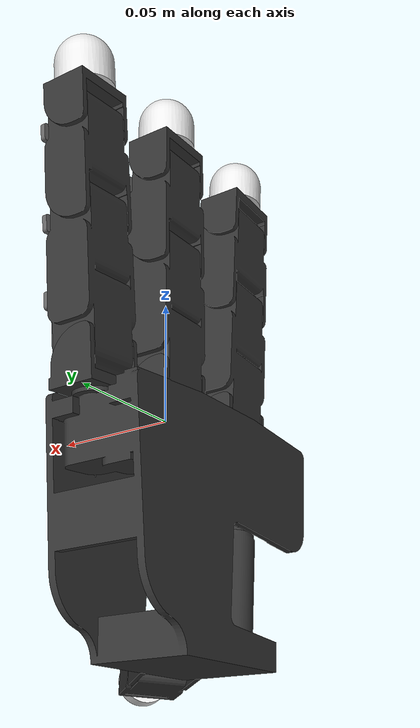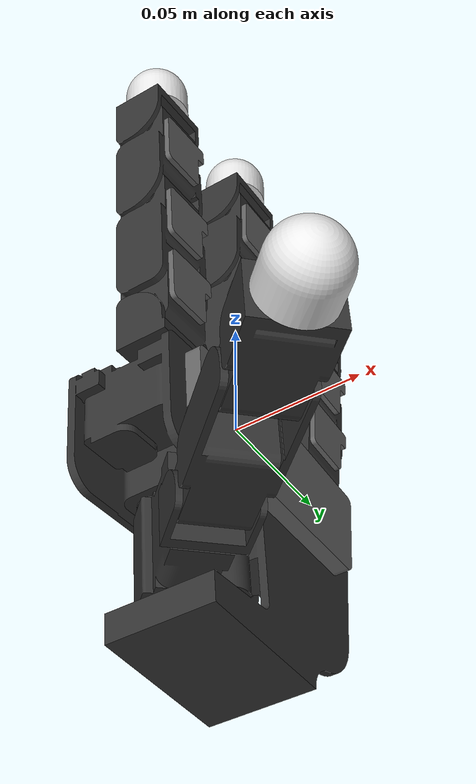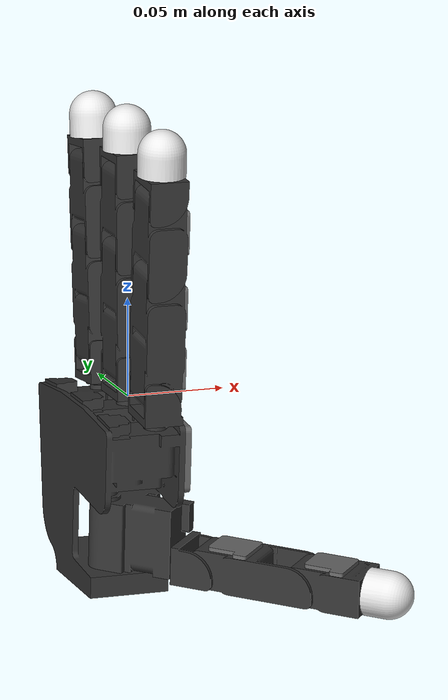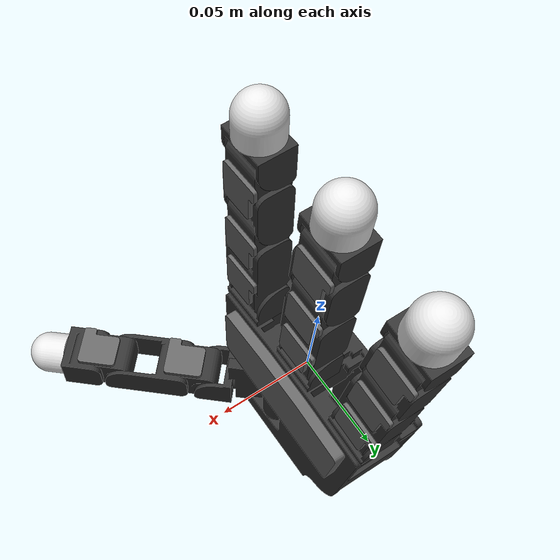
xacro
<?xml version="1.0"?>
<robot xmlns:xacro="http://www.ros.org/wiki/xacro" name="meta_hand">

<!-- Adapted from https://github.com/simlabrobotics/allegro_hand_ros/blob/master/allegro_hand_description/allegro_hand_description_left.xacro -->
<xacro:property name="DEG2RAD" value="0.01745329251" />

<!-- ======================== BASE PARAMS ========================= -->
<xacro:property name="base_link_z" value="0.095" />

<!-- ======================== FINGER PARAMS ======================== -->
<xacro:property name="offset_origin_x_const" value="0" />
<xacro:property name="offset_origin_y_const" value="0.0435" />
<xacro:property name="offset_origin_z_const" value="-0.001542" />
<xacro:property name="offset_origin_z_mid_const" value="0.0007" />

<xacro:include filename="allegro_hand.urdf.xacro" />

<xacro:arg name="asset_prefix" default="package://meta_hand_description" />
<xacro:arg name="side" default="left"/>
<xacro:arg name="fingertip" default="base" />
<xacro:arg name="sphere_fingertip_coll" default="false" />
<xacro:arg name="adjust_fingertip" default="false" />

<xacro:property name="asset_prefix" value="$(arg asset_prefix)" />
<xacro:property name="side" value="$(arg side)" />
<xacro:property name="fingertip" value="$(arg fingertip)" />
<xacro:property name="sphere_fingertip_coll" value="$(arg sphere_fingertip_coll)" />
<xacro:property name="adjust_fingertip" value="$(arg adjust_fingertip)" />

<xacro:if value="${side == 'left'}">
	<xacro:property name="base_mesh" value="${asset_prefix}/meshes/base_link_left.STL" />
	<xacro:property name="base_roll" value="${-90*DEG2RAD}" />
	<xacro:property name="finger0_y" value="${-1*offset_origin_y_const}" />
	<xacro:property name="finger0_roll" value="${5*DEG2RAD}" />
	<xacro:property name="finger2_y" value="${offset_origin_y_const}" />
	<xacro:property name="finger2_roll" value="${-5*DEG2RAD}" />
	<xacro:property name="thumb_y" value="-0.019333" />
	<xacro:property name="thumb_yaw" value="${90*DEG2RAD}" />
	<xacro:if value="${fingertip == 'digitv1'}">
        <xacro:property name="fingertip0_yaw" value="${90*DEG2RAD}" />
        <xacro:property name="fingertip1_yaw" value="0" />
        <xacro:property name="fingertip2_yaw" value="${-90*DEG2RAD}" />
        <xacro:property name="fingertip3_yaw" value="${60*DEG2RAD}" />
    </xacro:if>
	<xacro:unless value="${fingertip == 'digitv1'}">
        <xacro:property name="fingertip0_yaw" value="0" />
        <xacro:property name="fingertip1_yaw" value="0" />
        <xacro:property name="fingertip2_yaw" value="0" />
        <xacro:property name="fingertip3_yaw" value="0" />
    </xacro:unless>
	<xacro:if value="${adjust_fingertip}">
        <xacro:property name="fingertip0_roll" value="${90*DEG2RAD}" />
        <xacro:property name="fingertip1_roll" value="${90*DEG2RAD}" />
        <xacro:property name="fingertip2_roll" value="${90*DEG2RAD}" />
        <xacro:property name="fingertip3_roll" value="${90*DEG2RAD}" />
    </xacro:if>
	<xacro:unless value="${adjust_fingertip}">
        <xacro:property name="fingertip0_roll" value="0" />
        <xacro:property name="fingertip1_roll" value="0" />
        <xacro:property name="fingertip2_roll" value="0" />
        <xacro:property name="fingertip3_roll" value="0" />
    </xacro:unless>
</xacro:if>
<xacro:unless value="${side == 'left'}">
	<xacro:property name="base_mesh" value="${asset_prefix}/meshes/base_link.STL" />
	<xacro:property name="base_roll" value="0" />
	<xacro:property name="finger0_y" value="${offset_origin_y_const}" />
	<xacro:property name="finger0_roll" value="${-5*DEG2RAD}" />
	<xacro:property name="finger2_y" value="${-1*offset_origin_y_const}" />
	<xacro:property name="finger2_roll" value="${5*DEG2RAD}" />
	<xacro:property name="thumb_y" value="0.019333" />
	<xacro:property name="thumb_yaw" value="${-90*DEG2RAD}" />
	<xacro:if value="${fingertip == 'digitv1'}">
        <xacro:property name="fingertip0_yaw" value="${-90*DEG2RAD}" />
        <xacro:property name="fingertip1_yaw" value="0" />
        <xacro:property name="fingertip2_yaw" value="${90*DEG2RAD}" />
        <xacro:property name="fingertip3_yaw" value="${-60*DEG2RAD}" />
    </xacro:if>
	<xacro:unless value="${fingertip == 'digitv1'}">
        <xacro:property name="fingertip0_yaw" value="0" />
        <xacro:property name="fingertip1_yaw" value="0" />
        <xacro:property name="fingertip2_yaw" value="0" />
        <xacro:property name="fingertip3_yaw" value="0" />
    </xacro:unless>
	<xacro:if value="${adjust_fingertip}">
        <xacro:property name="fingertip0_roll" value="${90*DEG2RAD}" />
        <xacro:property name="fingertip1_roll" value="${90*DEG2RAD}" />
        <xacro:property name="fingertip2_roll" value="${90*DEG2RAD}" />
        <xacro:property name="fingertip3_roll" value="${90*DEG2RAD}" />
    </xacro:if>
	<xacro:unless value="${adjust_fingertip}">
        <xacro:property name="fingertip0_roll" value="0" />
        <xacro:property name="fingertip1_roll" value="0" />
        <xacro:property name="fingertip2_roll" value="0" />
        <xacro:property name="fingertip3_roll" value="0" />
    </xacro:unless>
</xacro:unless>

<xacro:macro name="meta_thumb" params="side asset_prefix fingertip sphere_fingertip_coll thumb_y thumb_yaw thumb_fingertip_roll thumb_fingertip_yaw" >

    <xacro:property name="reskin_joint_x" value="0.0118" />
    <xacro:property name="reskin_joint_y" value="0.009" />
    <xacro:property name="reskin_joint_z" value="0.022" />

    <xacro:thumb
        side=                   "${side}"
        asset_prefix=           "${asset_prefix}"
        finger_num=			    "3"
        fingertip=			    "${fingertip}"
        sphere_fingertip_coll=  "${sphere_fingertip_coll}"
        offset_origin_x=	    "-0.0182"
        offset_origin_y=	    "${thumb_y}"
        offset_origin_z=	    "-0.045987"
        finger_angle_r=		    "0"
        finger_angle_p=		    "-${95*DEG2RAD}"
        finger_angle_y=		    "${thumb_yaw}"
        fingertip_angle_r=      "${thumb_fingertip_roll}"
        fingertip_angle_y=      "${thumb_fingertip_yaw}"
    />

	<link name="reskin_link_${3*4+2}.0">
    	<visual>
      		<geometry>
                <mesh filename="${asset_prefix}/meshes/reskin_finger_pad.stl" scale="0.001 0.001 0.002"/>
        	</geometry>
            <origin rpy="${-90*DEG2RAD} 0 ${-90*DEG2RAD}" xyz="0 0 0"/>
            <material name="grey">
                <color rgba="0.4 0.4 0.4 1"/>
            </material>
    	</visual>
	</link>

    <joint name="reskin_joint_${3*4+2}" type="fixed">
        <parent link="link_${3*4+2}.0"/>
        <child link="reskin_link_${3*4+2}.0"/>
        <origin rpy="0 0 0" xyz="${reskin_joint_x} ${reskin_joint_y} ${reskin_joint_z}"/>
    </joint>

	<link name="reskin_link_${3*4+3}.0">
    	<visual>
      		<geometry>
                <mesh filename="${asset_prefix}/meshes/reskin_finger_pad.stl" scale="0.001 0.001 0.002"/>
        	</geometry>
            <origin rpy="${-90*DEG2RAD} 0 ${-90*DEG2RAD}" xyz="0 0 0"/>
            <material name="grey">
                <color rgba="0.4 0.4 0.4 1"/>
            </material>
    	</visual>
	</link>

    <joint name="reskin_joint_${3*4+3}" type="fixed">
        <parent link="link_${3*4+3}.0"/>
        <child link="reskin_link_${3*4+3}.0"/>
        <origin rpy="0 0 0" xyz="${reskin_joint_x} ${reskin_joint_y} ${reskin_joint_z}"/>
    </joint>

</xacro:macro>

<xacro:macro name="meta_finger" params="asset_prefix finger_num fingertip sphere_fingertip_coll offset_origin_x offset_origin_y offset_origin_z finger_angle_r fingertip_angle_r fingertip_angle_y" >

    <xacro:property name="reskin_joint_x_base" value="0.0118" />
    <xacro:property name="reskin_joint_x" value="0.0118" />
    <xacro:property name="reskin_joint_y" value="0.009" />
    <xacro:property name="reskin_joint_z0" value="0.022" />
    <xacro:property name="reskin_joint_z1" value="0.053" />
    <xacro:property name="reskin_joint_z2" value="0.0375" />

    <xacro:finger
        asset_prefix=           "${asset_prefix}"
        finger_num=			    "${finger_num}"
        fingertip=			    "${fingertip}"
        sphere_fingertip_coll=  "${sphere_fingertip_coll}"
        offset_origin_x=	    "${offset_origin_x}"
        offset_origin_y=	    "${offset_origin_y}"
        offset_origin_z=	    "${offset_origin_z}"
        finger_angle_r=		    "${finger_angle_r}"
        fingertip_angle_r=      "${fingertip_angle_r}"
        fingertip_angle_y=      "${fingertip_angle_y}"
    />

	<link name="reskin_link_${finger_num*4+1}.0a">
    	<visual>
      		<geometry>
                <mesh filename="${asset_prefix}/meshes/reskin_finger_pad.stl" scale="0.001 0.001 0.002"/>
        	</geometry>
            <origin rpy="${-90*DEG2RAD} 0 ${-90*DEG2RAD}" xyz="0 0 0"/>
            <material name="grey">
                <color rgba="0.4 0.4 0.4 1"/>
            </material>
    	</visual>
	</link>

    <joint name="reskin_joint_${finger_num*4+1}a" type="fixed">
        <parent link="link_${finger_num*4+1}.0"/>
        <child link="reskin_link_${finger_num*4+1}.0a"/>
        <origin rpy="0 0 0" xyz="${reskin_joint_x_base} ${reskin_joint_y} ${reskin_joint_z0}"/>
    </joint>

	<link name="reskin_link_${finger_num*4+1}.0b">
    	<visual>
      		<geometry>
                <mesh filename="${asset_prefix}/meshes/reskin_finger_pad.stl" scale="0.001 0.001 0.002"/>
        	</geometry>
            <origin rpy="${-90*DEG2RAD} 0 ${-90*DEG2RAD}" xyz="0 0 0"/>
            <material name="grey">
                <color rgba="0.4 0.4 0.4 1"/>
            </material>
    	</visual>
	</link>

    <joint name="reskin_joint_${finger_num*4+1}b" type="fixed">
        <parent link="link_${finger_num*4+1}.0"/>
        <child link="reskin_link_${finger_num*4+1}.0b"/>
        <origin rpy="0 0 0" xyz="${reskin_joint_x} ${reskin_joint_y} ${reskin_joint_z1}"/>
    </joint>

	<link name="reskin_link_${finger_num*4+2}.0">
    	<visual>
      		<geometry>
                <mesh filename="${asset_prefix}/meshes/reskin_finger_pad.stl" scale="0.001 0.001 0.002"/>
        	</geometry>
            <origin rpy="${-90*DEG2RAD} 0 ${-90*DEG2RAD}" xyz="0 0 0"/>
            <material name="grey">
                <color rgba="0.4 0.4 0.4 1"/>
            </material>
    	</visual>
	</link>

    <joint name="reskin_joint_${finger_num*4+2}" type="fixed">
        <parent link="link_${finger_num*4+2}.0"/>
        <child link="reskin_link_${finger_num*4+2}.0"/>
        <origin rpy="0 0 0" xyz="${reskin_joint_x} ${reskin_joint_y} ${reskin_joint_z2}"/>
    </joint>

</xacro:macro>

<!-- BASE -->
<link name="base_link">

	<visual>
    	<geometry>
      		<mesh filename="${base_mesh}" />
      	</geometry>

      	<origin rpy="${base_roll} 0 0" xyz="0 0 0 "/>

      	<material name="black">
        	<color rgba="0.2 0.2 0.2 1"/>
      	</material>
	</visual>

    <collision>
	    <origin rpy="0 0 0" xyz="-0.009300 0 -${base_link_z/2}"/>
    	<geometry>
        	<box size="0.0408 0.1130 ${base_link_z}"/>
      	</geometry>
    </collision>
    <inertial>
      <origin xyz="0 0 0.0475" rpy="0 0 0"/>
      <mass value="0.4154"/>
      <inertia
          ixx="1e-4" ixy="0.0" ixz="0.0"
          iyy="1e-4" iyz="0.0"
          izz="1e-4"/>
      </inertial>

</link>

<link name="palm_reskin_link">
    <visual>
        <geometry>
            <mesh filename="${asset_prefix}/meshes/reskin_palm_pad.stl" scale="0.001 0.001 0.004"/>
        </geometry>
        <origin rpy="${90*DEG2RAD} 0 ${90*DEG2RAD}" xyz="0 0 0 "/>
      	<material name="grey">
        	<color rgba="0.4 0.4 0.4 1"/>
      	</material>
    </visual>
</link>

<joint name="palm_reskin_joint" type="fixed">
    <parent link="base_link"/>
    <child link="palm_reskin_link"/>
    <origin rpy="0 0 0" xyz="0.0175 -0.0457 -0.041"/>
</joint>

<!-- FINGERS -->
<xacro:meta_finger
    asset_prefix=           "${asset_prefix}"
	finger_num=			    "0"
	fingertip=			    "$(arg fingertip)"
    sphere_fingertip_coll=  "${sphere_fingertip_coll}"
	offset_origin_x=	    "${offset_origin_x_const}"
	offset_origin_y=	    "${finger0_y}"
	offset_origin_z=	    "${offset_origin_z_const}"
	finger_angle_r=		    "${finger0_roll}"
    fingertip_angle_r=      "${fingertip0_roll}"
    fingertip_angle_y=      "${fingertip0_yaw}"
/>

<xacro:meta_finger
    asset_prefix=           "${asset_prefix}"
	finger_num=			    "1"
	fingertip=			    "$(arg fingertip)"
    sphere_fingertip_coll=  "${sphere_fingertip_coll}"
	offset_origin_x=	    "${offset_origin_x_const}"
	offset_origin_y=	    "0"
	offset_origin_z=	    "${offset_origin_z_mid_const}"
	finger_angle_r=		    "0.0"
    fingertip_angle_r=      "${fingertip1_roll}"
    fingertip_angle_y=      "${fingertip1_yaw}"
/>

<xacro:meta_finger
    asset_prefix=           "${asset_prefix}"
	finger_num=			    "2"
	fingertip=			    "$(arg fingertip)"
    sphere_fingertip_coll=  "${sphere_fingertip_coll}"
	offset_origin_x=	    "${offset_origin_x_const}"
	offset_origin_y=	    "${finger2_y}"
	offset_origin_z=	    "${offset_origin_z_const}"
	finger_angle_r=		    "${finger2_roll}"
    fingertip_angle_r=      "${fingertip2_roll}"
    fingertip_angle_y=      "${fingertip2_yaw}"
/>

<!-- THUMB -->
<xacro:meta_thumb
	side=                   "${side}"
    asset_prefix=           "${asset_prefix}"
	fingertip=			    "$(arg fingertip)"
    sphere_fingertip_coll=  "${sphere_fingertip_coll}"
	thumb_y=	            "${thumb_y}"
	thumb_yaw=		        "${thumb_yaw}"
    thumb_fingertip_roll=   "${fingertip3_roll}"
    thumb_fingertip_yaw=    "${fingertip3_yaw}"
/>

</robot>

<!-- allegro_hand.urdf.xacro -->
<robot xmlns:xacro="http://www.ros.org/wiki/xacro" name="allegro_hand_left">
<!-- Adapted from https://github.com/simlabrobotics/allegro_hand_ros/blob/master/allegro_hand_description/allegro_hand_description_left.xacro -->

<xacro:arg name="joint_postfix" default=""/>
<xacro:property name="DEG2RAD" value="0.01745329251" />
<xacro:property name="fingertip_enum_base" value="base" />
<xacro:property name="fingertip_enum_digit" value="digitv1" />
<xacro:property name="fingertip_enum_digit360" value="digit360" />

<!-- ======================== FINGER PARAMS ======================== -->

<xacro:property name="links_x" value="0.0196" />
<xacro:property name="links_y" value="0.0275" />

<xacro:property name="link0_z" value="0.0164" />
<xacro:property name="link1_z" value="0.0540" />
<xacro:property name="link2_z" value="0.0384" />

<!-- full height from joint to tip. when used,
the radius of the finger tip sphere will be subtracted
and one fixed link will be added for the tip. -->
<xacro:property name="link3_z" value="0.0387" />
<xacro:property name="fingerTip_r" value="0.0120" />

<!-- ========================= THUMB PARAMS ========================= -->

<xacro:property name="link0_t_x" value="0.0358" />
<xacro:property name="link0_t_y" value="0.0340" />
<xacro:property name="link0_t_z" value="0.0455" />

<xacro:property name="link1_t_z" value="0.0177" />
<xacro:property name="link2_t_z" value="0.0514" />
<xacro:property name="link3_t_z" value="0.0543" />

<!-- ========================= LIMITS ========================= -->

<xacro:property name="joint_safety_margin" value="0.1" />
<xacro:property name="limit_0_up" value="0.57" />
<xacro:property name="limit_0_low" value="-0.57" />
<xacro:property name="limit_1_up" value="1.19" />
<xacro:property name="limit_1_low" value="-0.26" />
<xacro:property name="limit_2_up" value="0.97" />
<xacro:property name="limit_2_low" value="-0.274" />
<xacro:property name="limit_3_up" value="0.90" />
<xacro:property name="limit_3_low" value=" -0.27" />

<xacro:property name="limit_0_t_up" value="1.496" />
<xacro:property name="limit_0_t_low" value="0.363" />
<xacro:property name="limit_1_t_up" value="1.263" />
<xacro:property name="limit_1_t_low" value="-0.205" />
<xacro:property name="limit_2_t_up" value="1.27" />
<xacro:property name="limit_2_t_low" value="-0.12" />
<xacro:property name="limit_3_t_up" value="1.75" />
<xacro:property name="limit_3_t_low" value="-0.28" />

<!-- THUMB MACRO -->
<xacro:macro name="thumb" params="side asset_prefix finger_num fingertip sphere_fingertip_coll offset_origin_x offset_origin_y offset_origin_z finger_angle_r finger_angle_p finger_angle_y fingertip_angle_r fingertip_angle_y">

	<xacro:if value="${side == 'left'}">
		<xacro:property name="thumb_base_mesh" value="${asset_prefix}/meshes/link_12.0_left.STL" />
		<xacro:property name="thumb_base_coll_y" value="-0.009" />
		<xacro:property name="thumb_base_jnt_roll" value="1" />
		<xacro:property name="thumb_yaw_jnt_yaw" value="-1" />
		<xacro:property name="thumb_yaw_jnt_y" value="-0.005" />
	</xacro:if>
	<xacro:unless value="${side == 'left'}">
		<xacro:property name="thumb_base_mesh" value="${asset_prefix}/meshes/link_12.0_right.STL" />
		<xacro:property name="thumb_base_coll_y" value="0.009" />
		<xacro:property name="thumb_base_jnt_roll" value="-1" />
		<xacro:property name="thumb_yaw_jnt_yaw" value="1" />
		<xacro:property name="thumb_yaw_jnt_y" value="0.005" />
	</xacro:unless>

	<xacro:if value="${fingertip == fingertip_enum_base}">
		<xacro:property name="fingertip_mesh" value="${asset_prefix}/meshes/link_15.0_tip.STL" />
		<xacro:property name="fingertip_jnt_z" value="${link3_t_z-fingerTip_r}" />
	</xacro:if>
	<xacro:if value="${fingertip == fingertip_enum_digit}">
		<xacro:property name="fingertip_mesh" value="${asset_prefix}/meshes/digit.dae" />
		<xacro:property name="fingertip_jnt_z" value="0.0303" />
	</xacro:if>
	<xacro:if value="${fingertip == fingertip_enum_digit360}">
		<xacro:property name="fingertip_mesh" value="${asset_prefix}/meshes/digitv2.dae" />
		<xacro:property name="fingertip_jnt_z" value="0.0303" />
	</xacro:if>

<!-- [LINK 12] -->
	<link name="link_${finger_num*4+0}.0">

    	<visual>
			<geometry>
      			<mesh filename="${thumb_base_mesh}" />
      		</geometry>
      		<material name="black">
        		<color rgba=".2 .2 .2 1"/>
      		</material>
			<xacro:if value="${side == 'left'}">
      			<origin rpy="${180*DEG2RAD} 0 0" xyz="0 0 0"/>
			</xacro:if>
    	</visual>

    	<collision>
      		<geometry>
        		<box size="${link0_t_x} ${link0_t_y} ${link0_t_z}"/>
      		</geometry>

     		<origin rpy="0 0 0" xyz="${-0.0358/2+0.0} ${thumb_base_coll_y} ${.029/2}"/>
    	</collision>
		<inertial>
			<mass value="0.0176" />
			<origin xyz="0 0 0" rpy="0 0 0"/>
			<inertia ixx="1.89273333333e-5" ixy="7.16716e-06" ixz="5.35568e-06"
					iyy="1.43008213333e-05" iyz="6.8068e-06"
					izz="1.89273333333e-05" />
		</inertial>
	</link>

	<joint name="joint_${finger_num*4+0}$(arg joint_postfix)" type="revolute">

    	<axis xyz="${thumb_base_jnt_roll} 0 0"/>
    	<limit effort="0.35" velocity="6.283" lower="${limit_0_t_low-joint_safety_margin}" upper="${limit_0_t_up-joint_safety_margin}" />
    	<parent link="base_link"/>
    	<child link="link_${finger_num*4+0}.0"/>
    	<origin rpy="${finger_angle_r} ${finger_angle_p} ${finger_angle_y}" xyz="${offset_origin_x} ${offset_origin_y} ${offset_origin_z}"/>

	</joint>

<!-- [LINK 13] -->
	<link name="link_${finger_num*4+1}.0">
		<visual>
			<geometry>
		    	<mesh filename="${asset_prefix}/meshes/link_13.0.STL" />
		  	</geometry>

		  	<material name="black">
		  		<color rgba=".2 .2 .2 1"/>
		 	</material>
		</visual>

		<collision>
			<geometry>
		    	<box size="${links_x} ${links_y} ${link1_t_z}"/>
		  	</geometry>

		  	<origin rpy="0 0 0" xyz="0 0 ${link1_t_z/2}"/>
		</collision>

		<inertial>
			<mass value="0.0119" />
			<origin xyz="0 0 0" rpy="0 0 0"/>
			<inertia ixx="4.24250866667e-06" ixy="1.032087e-06" ixz="1.603525e-06"
					iyy="4.52362633333e-06" iyz="1.44808125e-06"
					izz="4.24250866667e-06" />
		</inertial>
	</link>

  	<joint name="joint_${finger_num*4+1}$(arg joint_postfix)" type="revolute">

    	<axis xyz="0 0 ${thumb_yaw_jnt_yaw}"/>
     	<limit effort="0.35" velocity="6.283" lower="${limit_1_t_low+joint_safety_margin}" upper="${limit_1_t_up-joint_safety_margin}" />
    	<parent link="link_${finger_num*4+0}.0"/>
    	<child link="link_${finger_num*4+1}.0"/>

    	<origin xyz="-0.027 ${thumb_yaw_jnt_y} 0.0399"/>

  	</joint>

<!-- [LINK 14] -->

	<link name="link_${finger_num*4+2}.0">
		<visual>
			<geometry>
		  		<mesh filename="${asset_prefix}/meshes/link_14.0.STL" />
			</geometry>
			<material name="black">
		  		<color rgba=".2 .2 .2 1"/>
		  	</material>
		</visual>

		<collision>
			<geometry>
		    	<box size="${links_x} ${links_y} ${link2_t_z}"/>
		  	</geometry>
		  	<origin rpy="0 0 0" xyz="0 0 ${link2_t_z/2}"/>
		</collision>
		<inertial>
			<mass value="0.038" />
			<origin xyz="0 0 0" rpy="0 0 0"/>
			<inertia ixx="4.30439933333e-05" ixy="9.57068e-06" ixz="5.1205e-06" iyy="1.44451933333e-05"
					iyz="1.342825e-05" izz="4.30439933333e-05" />
		</inertial>
	</link>

  <joint name="joint_${finger_num*4+2}$(arg joint_postfix)" type="revolute">

		<axis xyz="0 1 0"/>
		<limit effort="0.35" velocity="6.238" lower="${limit_2_t_low+joint_safety_margin}" upper="${limit_2_t_up-joint_safety_margin}" />
		<parent link="link_${finger_num*4+1}.0"/>
		<child link="link_${finger_num*4+2}.0"/>
		<origin xyz="0 0 ${link1_t_z}"/>

  </joint>

<!-- [LINK 15] -->

	<link name="link_${finger_num*4+3}.0">

    	<visual>
      		<geometry>
      				<mesh filename="${asset_prefix}/meshes/link_15.0.STL" />
        	</geometry>

    	<material name="black">
            <color rgba=".2 .2 .2 1"/>
    	</material>
    	</visual>

    	<collision>
			<geometry>
				<xacro:if value="${sphere_fingertip_coll}">
					<sphere radius="0.0001"/>
				</xacro:if>
				<xacro:unless value="${sphere_fingertip_coll}">
					<box size="${links_x} ${links_y} ${link3_t_z-fingerTip_r}"/>
				</xacro:unless>
			</geometry>
      		<origin rpy="0 0 0" xyz="0 0 ${(link3_t_z-fingerTip_r)/2}"/>
    	</collision>
		<inertial>
			<mass value="0.0388" />
			<origin xyz="0 0 0" rpy="0 0 0"/>
			<inertia ixx="3.29223173333e-05" ixy="8.042076e-06" ixz="5.2283e-06"
					iyy="1.47493026667e-5" iyz="1.1283525e-5"
					izz="3.29223173333e-05" />
		</inertial>
	</link>

	<joint name="joint_${finger_num*4+3}$(arg joint_postfix)" type="revolute">
    	<axis xyz="0 1 0"/>
     	<limit effort="0.35" velocity="6.238" lower="${limit_3_t_low+joint_safety_margin}" upper="${limit_3_t_up-joint_safety_margin}" />
    	<parent link="link_${finger_num*4+2}.0"/>
    	<child link="link_${finger_num*4+3}.0"/>
    	<origin xyz="0 0 ${link2_t_z}"/>
	</joint>

<!-- [FINGER TIP] -->

	<link name="link_${finger_num*4+3}.0_tip">
		<visual>
			<geometry>
		  		<mesh filename="${fingertip_mesh}" />
		  	</geometry>

		  	<material name="white">
		  		<color rgba=".9 .9 .9 1"/>
		  	</material>
    	</visual>

     	<collision>
			<xacro:if value="${sphere_fingertip_coll}">
				<geometry>
					<sphere radius="0.016"/>
				</geometry>
				<origin rpy="0 0 0" xyz="0.0036695246 0.0000277434 0.0124368531" />
			</xacro:if>
			<xacro:unless value="${sphere_fingertip_coll}">
				<geometry>
					<xacro:if value="${fingertip == fingertip_enum_base}">
						<sphere radius="${fingerTip_r}"/>
					</xacro:if>
					<xacro:unless value="${fingertip == fingertip_enum_base}">
						<mesh filename="${fingertip_mesh}" />
					</xacro:unless>
				</geometry>
				<origin rpy="0 0 0" xyz="0 0 0"/>
			</xacro:unless>
    	</collision>

	</link>

  	<joint name="joint_${finger_num*4+3}_tip" type="fixed">
    	<parent link="link_${finger_num*4+3}.0"/>
    	<child link="link_${finger_num*4+3}.0_tip"/>
    	<origin rpy="${fingertip_angle_r} 0 ${fingertip_angle_y}" xyz="0 0 ${fingertip_jnt_z}"/>
  	</joint>

</xacro:macro>

<!-- END THUMB MACRO -->

<!-- THREE FINGER MACRO -->
<xacro:macro name="finger" params="asset_prefix finger_num fingertip sphere_fingertip_coll offset_origin_x offset_origin_y offset_origin_z finger_angle_r fingertip_angle_r fingertip_angle_y">

	<xacro:if value="${fingertip == fingertip_enum_base}">
		<xacro:property name="fingertip_mesh" value="${asset_prefix}/meshes/link_3.0_tip.STL" />
		<xacro:property name="fingertip_jnt_z" value="${link3_z-fingerTip_r}" />
	</xacro:if>
	<xacro:if value="${fingertip == fingertip_enum_digit}">
		<xacro:property name="fingertip_mesh" value="${asset_prefix}/meshes/digit.dae" />
		<xacro:property name="fingertip_jnt_z" value="0.0147" />
	</xacro:if>
	<xacro:if value="${fingertip == fingertip_enum_digit360}">
		<xacro:property name="fingertip_mesh" value="${asset_prefix}/meshes/digitv2.dae" />
		<xacro:property name="fingertip_jnt_z" value="0.0147" />
	</xacro:if>

<!-- [LINK 0, 4, 8] -->

	<link name="link_${finger_num*4+0}.0">
    	<visual>
    		<geometry>
      			<mesh filename="${asset_prefix}/meshes/link_0.0.STL" />
      		</geometry>
      		<material name="black">
		  		<color rgba=".2 .2 .2 1"/>
      		</material>
    	</visual>

    	<collision>
      		<geometry>
        		<box size="${links_x} ${links_y} ${link0_z}"/>
      		</geometry>
      		<origin rpy="0 0 0" xyz="0 0 ${link0_z/2}"/>
    	</collision>
		<inertial>
			<mass value="0.0119" />
			<origin xyz="0 0 0" rpy="0 0 0"/>
			<inertia ixx="1.01666658333e-06" ixy="0.0" ixz="0.0"
					iyy="6.47677333333e-07" iyz="0.0"
					izz="1.01666658333e-06" />
		</inertial>
	</link>

  	<joint name="joint_${finger_num*4+0}$(arg joint_postfix)" type="revolute">
    	<axis xyz="0 0 1"/>
    	<limit effort="0.35" velocity="6.283" lower="${limit_0_low+joint_safety_margin}" upper="${limit_0_up-joint_safety_margin}" />
    	<parent link="base_link"/>
    	<child link="link_${finger_num*4+0}.0"/>
    	<origin rpy="${finger_angle_r} 0 0" xyz="${offset_origin_x} ${offset_origin_y} ${offset_origin_z}"/>
  	</joint>

<!-- [LINK 1, 5, 9] -->

	<link name="link_${finger_num*4+1}.0">
    	<visual>
      		<geometry>
      			<mesh filename="${asset_prefix}/meshes/link_1.0.STL" />
      		</geometry>
      		<material name="black">
		  		<color rgba=".2 .2 .2 1"/>
		  	</material>
    	</visual>

    	<collision>
      		<geometry>
        		<box size="${links_x} ${links_y} ${link1_z}"/>
      		</geometry>
	  		<origin rpy="0 0 0" xyz="0 0 ${link1_z/2}"/>
    	</collision>
		<inertial>
			<mass value="0.065" />
			<origin xyz="0 0 0" rpy="0 0 0"/>
			<inertia ixx="7.95654166667e-05" ixy="1.7199e-05" ixz="8.75875e-06"
					iyy="2.47088833333e-05" iyz="2.413125e-05"
					izz="7.95654166667e-05" />
		</inertial>
  	</link>

  	<joint name="joint_${finger_num*4+1}$(arg joint_postfix)" type="revolute">
  		<limit effort="0.35" velocity="6.283" lower="${limit_1_low+joint_safety_margin}" upper="${limit_1_up-joint_safety_margin}" />
    	<axis xyz="0 1 0"/>
    	<parent link="link_${finger_num*4+0}.0"/>
    	<child link="link_${finger_num*4+1}.0"/>
    	<origin xyz="0 0 ${link0_z}"/>
  	</joint>

<!-- [LINK 2, 6, 10]-->

	<link name="link_${finger_num*4+2}.0">
    	<visual>
      		<geometry>
      			<mesh filename="${asset_prefix}/meshes/link_2.0.STL" />
      		</geometry>
      		<material name="black">
		  		<color rgba=".2 .2 .2 1"/>
            </material>
    	</visual>

    	<collision>
      		<geometry>
        		<box size="${links_x} ${links_y} ${link2_z}"/>
      		</geometry>
      		<origin rpy="0 0 0" xyz="0 0 ${link2_z/2}"/>
    	</collision>
		<inertial>
			<mass value="0.0355" />
			<origin xyz="0 0 0" rpy="0 0 0"/>
			<inertia ixx="2.63979183333e-05" ixy="6.67968e-06" ixz="4.783625e-06"
					iyy="1.34948516667e-05" iyz="9.372e-06"
					izz="2.63979183333e-05" />
		</inertial>
  	</link>

  	<joint name="joint_${finger_num*4+2}$(arg joint_postfix)" type="revolute">
    	<axis xyz="0 1 0"/>
    	<limit effort="0.35" velocity="6.283" lower="${limit_2_low+joint_safety_margin}" upper="${limit_2_up-joint_safety_margin}" />
    	<parent link="link_${finger_num*4+1}.0"/>
    	<child link="link_${finger_num*4+2}.0"/>
    	<origin xyz="0 0 ${link1_z}"/>
  	</joint>

<!-- [LINK 3, 7, 11] -->

	<link name="link_${finger_num*4+3}.0">
    	<visual>
      		<geometry>
      			<mesh filename="${asset_prefix}/meshes/link_3.0.STL" />
        	</geometry>
      		<material name="black">
		  		<color rgba=".2 .2 .2 1"/>
	        </material>
    	</visual>

    	<collision>
			<geometry>
				<xacro:if value="${sphere_fingertip_coll}">
					<sphere radius="0.0001"/>
				</xacro:if>
				<xacro:unless value="${sphere_fingertip_coll}">
					<box size="${links_x} ${links_y} ${link3_z-fingerTip_r}"/>
				</xacro:unless>
			</geometry>
      		<origin rpy="0 0 0" xyz="0 0 ${(link3_z-fingerTip_r)/2}"/>
    	</collision>
		<inertial>
			<mass value="0.0096" />
			<origin xyz="0 0 0" rpy="0 0 0"/>
			<inertia ixx="4.701248e-06" ixy="1.255968e-06" ixz="1.2936e-06"
					iyy="3.649312e-06" iyz="1.7622e-06"
					izz="4.701248e-06" />
		</inertial>
  	</link>

  	<joint name="joint_${finger_num*4+3}$(arg joint_postfix)" type="revolute">
    	<axis xyz="0 1 0"/>
    	<limit effort="0.35" velocity="6.283" lower="${limit_3_low+joint_safety_margin}" upper="${limit_3_up-joint_safety_margin}" />
    	<parent link="link_${finger_num*4+2}.0"/>
    	<child link="link_${finger_num*4+3}.0"/>
    	<origin xyz="0 0 ${link2_z}"/>
  	</joint>

<!-- [FINGER TIP] -->

	<link name="link_${finger_num*4+3}.0_tip">
   		<visual>
      		<geometry>
      			<mesh filename="${fingertip_mesh}" />
        	</geometry>
		  	<material name="white">
        		<color rgba=".9 .9 .9 1"/>
      		</material>
    	</visual>

     	<collision>
			<xacro:if value="${sphere_fingertip_coll}">
				<geometry>
					<sphere radius="0.016"/>
				</geometry>
				<origin rpy="0 0 0" xyz="0.0036695246 0.0000277434 0.0124368531" />
			</xacro:if>
			<xacro:unless value="${sphere_fingertip_coll}">
				<geometry>
					<xacro:if value="${fingertip == fingertip_enum_base}">
						<sphere radius="${fingerTip_r}"/>
					</xacro:if>
					<xacro:unless value="${fingertip == fingertip_enum_base}">
						<mesh filename="${fingertip_mesh}" />
					</xacro:unless>
				</geometry>
			</xacro:unless>
    	</collision>
		<inertial>
			<mass value="0.0168" />
			<origin xyz="0 0 0" rpy="0 0 0"/>
			<inertia ixx="9.68e-07" ixy="0" ixz="0"
					iyy="9.68e-07" iyz="0"
					izz="9.68e-07" />
		</inertial>

  		</link>
		<joint name="joint_${finger_num*4+3}_tip" type="fixed">
    		<parent link="link_${finger_num*4+3}.0"/>
    		<child link="link_${finger_num*4+3}.0_tip"/>
    		<origin rpy="${fingertip_angle_r} 0 ${fingertip_angle_y}" xyz="0 0 ${fingertip_jnt_z}"/>
  		</joint>

</xacro:macro>
<!-- [[END]] THREE FINGER MACRO -->

</robot>
